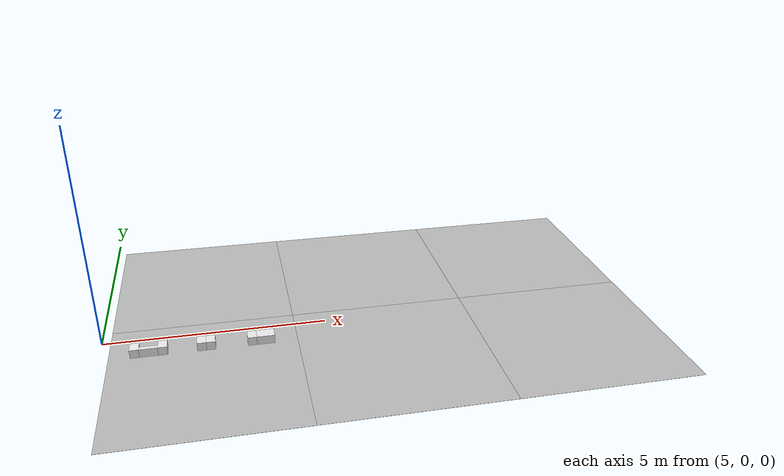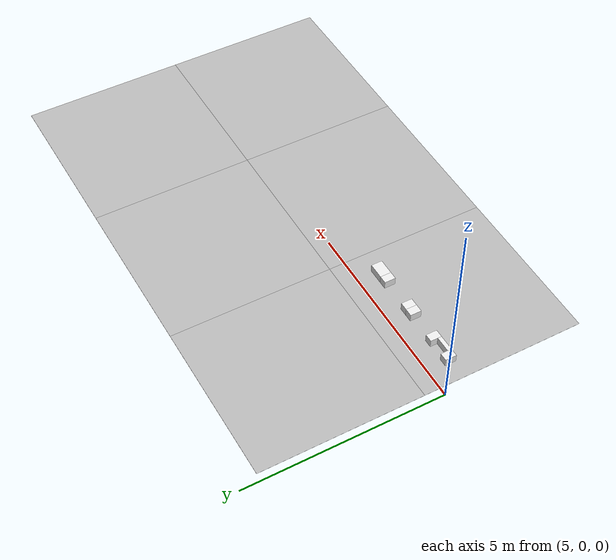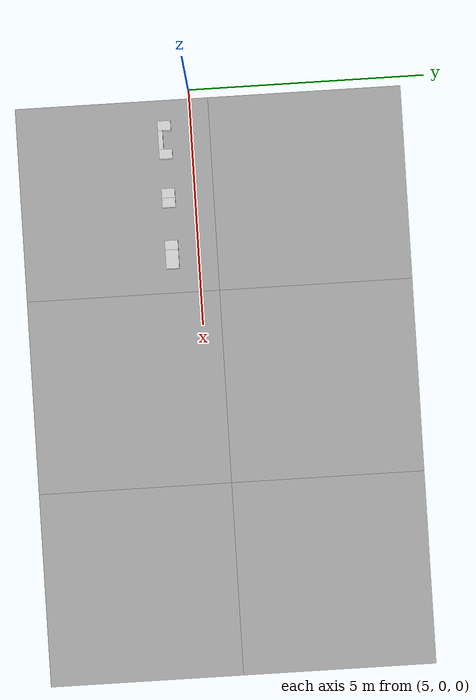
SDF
<sdf version="1.6">
 <world name="default">
  <model name="Tile/2-0">
   <static>1</static>
   <link name="link">
    <collision name="collision">
     <geometry><plane><normal>0 0 1</normal><size>4.096 4.096</size></plane></geometry>
     <surface><friction><ode><mu>100</mu><mu2>50</mu2></ode></friction></surface>
    </collision>
    <visual name="visual">
     <cast_shadows>0</cast_shadows>
     <geometry><plane><normal>0 0 1</normal><size>4.096 4.096</size></plane></geometry>
     <material>
      <script>
       <uri>file://materials/scripts</uri>
       <uri>file://materials/textures</uri>
       <name>Tile/a379fc379e664b545e98a0c7c8d8d15c42673b416fc362281216d9c1a77ca6e1</name>
      </script>
     </material>
    </visual>
   </link>
   <pose>7.24 -1.6520000000000001 0 0 -0 0</pose>
  </model>
  <model name="Tile/2-1">
   <static>1</static>
   <link name="link">
    <collision name="collision">
     <geometry><plane><normal>0 0 1</normal><size>4.096 4.096</size></plane></geometry>
     <surface><friction><ode><mu>100</mu><mu2>50</mu2></ode></friction></surface>
    </collision>
    <visual name="visual">
     <cast_shadows>0</cast_shadows>
     <geometry><plane><normal>0 0 1</normal><size>4.096 4.096</size></plane></geometry>
     <material>
      <script>
       <uri>file://materials/scripts</uri>
       <uri>file://materials/textures</uri>
       <name>Tile/13957a6de1f2afce18d7f1f64dacc2f21295e26ccf498256b0e1a51002cd5706</name>
      </script>
     </material>
    </visual>
   </link>
   <pose>7.24 2.444 0 0 -0 0</pose>
  </model>
  <model name="Tile/3-0">
   <static>1</static>
   <link name="link">
    <collision name="collision">
     <geometry><plane><normal>0 0 1</normal><size>4.096 4.096</size></plane></geometry>
     <surface><friction><ode><mu>100</mu><mu2>50</mu2></ode></friction></surface>
    </collision>
    <visual name="visual">
     <cast_shadows>0</cast_shadows>
     <geometry><plane><normal>0 0 1</normal><size>4.096 4.096</size></plane></geometry>
     <material>
      <script>
       <uri>file://materials/scripts</uri>
       <uri>file://materials/textures</uri>
       <name>Tile/abe61641e72e42510ec0c33382329821aa0ffdabd8bdd301795f6aacd2568930</name>
      </script>
     </material>
    </visual>
   </link>
   <pose>11.336 -1.6520000000000001 0 0 -0 0</pose>
  </model>
  <model name="Tile/3-1">
   <static>1</static>
   <link name="link">
    <collision name="collision">
     <geometry><plane><normal>0 0 1</normal><size>4.096 4.096</size></plane></geometry>
     <surface><friction><ode><mu>100</mu><mu2>50</mu2></ode></friction></surface>
    </collision>
    <visual name="visual">
     <cast_shadows>0</cast_shadows>
     <geometry><plane><normal>0 0 1</normal><size>4.096 4.096</size></plane></geometry>
     <material>
      <script>
       <uri>file://materials/scripts</uri>
       <uri>file://materials/textures</uri>
       <name>Tile/9a638098c074a6a28d2b802bd76e24a7c94687fec106f022fc197313878202a5</name>
      </script>
     </material>
    </visual>
   </link>
   <pose>11.336 2.444 0 0 -0 0</pose>
  </model>
  <model name="Tile/4-0">
   <static>1</static>
   <link name="link">
    <collision name="collision">
     <geometry><plane><normal>0 0 1</normal><size>4.096 4.096</size></plane></geometry>
     <surface><friction><ode><mu>100</mu><mu2>50</mu2></ode></friction></surface>
    </collision>
    <visual name="visual">
     <cast_shadows>0</cast_shadows>
     <geometry><plane><normal>0 0 1</normal><size>4.096 4.096</size></plane></geometry>
     <material>
      <script>
       <uri>file://materials/scripts</uri>
       <uri>file://materials/textures</uri>
       <name>Tile/5eab350b8220ac9944dbdfa4ac3288c7c17e24c3bf5df0dfcf6173d64dae00a1</name>
      </script>
     </material>
    </visual>
   </link>
   <pose>15.431999999999999 -1.6520000000000001 0 0 -0 0</pose>
  </model>
  <model name="Tile/4-1">
   <static>1</static>
   <link name="link">
    <collision name="collision">
     <geometry><plane><normal>0 0 1</normal><size>4.096 4.096</size></plane></geometry>
     <surface><friction><ode><mu>100</mu><mu2>50</mu2></ode></friction></surface>
    </collision>
    <visual name="visual">
     <cast_shadows>0</cast_shadows>
     <geometry><plane><normal>0 0 1</normal><size>4.096 4.096</size></plane></geometry>
     <material>
      <script>
       <uri>file://materials/scripts</uri>
       <uri>file://materials/textures</uri>
       <name>Tile/5eab350b8220ac9944dbdfa4ac3288c7c17e24c3bf5df0dfcf6173d64dae00a1</name>
      </script>
     </material>
    </visual>
   </link>
   <pose>15.431999999999999 2.444 0 0 -0 0</pose>
  </model>
  <model name="Obstacle/-57/0">
   <pose>5.750000000000001 -0.5599999999999999 0.1 0 0 -0.0</pose>
   <link name="link">
    <inertial>
     <mass>10</mass>
     <inertia>
      <ixx>0.166667</ixx>
      <ixy>0</ixy>
      <ixz>0</ixz>
      <iyy>0.166667</iyy>
      <iyz>0</iyz>
      <izz>0.166667</izz>
     </inertia>
    </inertial>
    <collision name="collision"><geometry><box><size>0.2 0.28 0.2</size></box></geometry></collision>
    <visual name="visual">
     <geometry><box><size>0.2 0.28 0.2</size></box></geometry>
     <material>
      <script><name>Gazebo/White</name><uri>file://media/materials/scripts/gazebo.material</uri></script>
     </material>
    </visual>
   </link>
  </model>
  <model name="Obstacle/-61/0">
   <pose>6.050000000000002 -0.6499999999999999 0.1 0 0 -0.0</pose>
   <link name="link">
    <inertial>
     <mass>10</mass>
     <inertia>
      <ixx>0.166667</ixx>
      <ixy>0</ixy>
      <ixz>0</ixz>
      <iyy>0.166667</iyy>
      <iyz>0</iyz>
      <izz>0.166667</izz>
     </inertia>
    </inertial>
    <collision name="collision"><geometry><box><size>0.4 0.1 0.2</size></box></geometry></collision>
    <visual name="visual">
     <geometry><box><size>0.4 0.1 0.2</size></box></geometry>
     <material>
      <script><name>Gazebo/White</name><uri>file://media/materials/scripts/gazebo.material</uri></script>
     </material>
    </visual>
   </link>
  </model>
  <model name="Obstacle/-65/0">
   <pose>6.350000000000001 -0.5599999999999999 0.1 0 0 -0.0</pose>
   <link name="link">
    <inertial>
     <mass>10</mass>
     <inertia>
      <ixx>0.166667</ixx>
      <ixy>0</ixy>
      <ixz>0</ixz>
      <iyy>0.166667</iyy>
      <iyz>0</iyz>
      <izz>0.166667</izz>
     </inertia>
    </inertial>
    <collision name="collision"><geometry><box><size>0.2 0.28 0.2</size></box></geometry></collision>
    <visual name="visual">
     <geometry><box><size>0.2 0.28 0.2</size></box></geometry>
     <material>
      <script><name>Gazebo/White</name><uri>file://media/materials/scripts/gazebo.material</uri></script>
     </material>
    </visual>
   </link>
  </model>
  <model name="Obstacle/-72/0">
   <pose>7.1800000000000015 -0.5599999999999999 0.1 0 0 -0.0</pose>
   <link name="link">
    <inertial>
     <mass>10</mass>
     <inertia>
      <ixx>0.166667</ixx>
      <ixy>0</ixy>
      <ixz>0</ixz>
      <iyy>0.166667</iyy>
      <iyz>0</iyz>
      <izz>0.166667</izz>
     </inertia>
    </inertial>
    <collision name="collision"><geometry><box><size>0.2 0.28 0.2</size></box></geometry></collision>
    <visual name="visual">
     <geometry><box><size>0.2 0.28 0.2</size></box></geometry>
     <material>
      <script><name>Gazebo/White</name><uri>file://media/materials/scripts/gazebo.material</uri></script>
     </material>
    </visual>
   </link>
  </model>
  <model name="Obstacle/-76/0">
   <pose>7.380000000000002 -0.5599999999999999 0.1 0 0 -0.0</pose>
   <link name="link">
    <inertial>
     <mass>10</mass>
     <inertia>
      <ixx>0.166667</ixx>
      <ixy>0</ixy>
      <ixz>0</ixz>
      <iyy>0.166667</iyy>
      <iyz>0</iyz>
      <izz>0.166667</izz>
     </inertia>
    </inertial>
    <collision name="collision"><geometry><box><size>0.2 0.28 0.2</size></box></geometry></collision>
    <visual name="visual">
     <geometry><box><size>0.2 0.28 0.2</size></box></geometry>
     <material>
      <script><name>Gazebo/White</name><uri>file://media/materials/scripts/gazebo.material</uri></script>
     </material>
    </visual>
   </link>
  </model>
  <model name="Obstacle/-83/0">
   <pose>8.280000000000001 -0.5599999999999999 0.1 0 0 -0.0</pose>
   <link name="link">
    <inertial>
     <mass>10</mass>
     <inertia>
      <ixx>0.166667</ixx>
      <ixy>0</ixy>
      <ixz>0</ixz>
      <iyy>0.166667</iyy>
      <iyz>0</iyz>
      <izz>0.166667</izz>
     </inertia>
    </inertial>
    <collision name="collision"><geometry><box><size>0.2 0.28 0.2</size></box></geometry></collision>
    <visual name="visual">
     <geometry><box><size>0.2 0.28 0.2</size></box></geometry>
     <material>
      <script><name>Gazebo/White</name><uri>file://media/materials/scripts/gazebo.material</uri></script>
     </material>
    </visual>
   </link>
  </model>
  <model name="Obstacle/-87/0">
   <pose>8.58 -0.5599999999999999 0.1 0 0 -0.0</pose>
   <link name="link">
    <inertial>
     <mass>10</mass>
     <inertia>
      <ixx>0.166667</ixx>
      <ixy>0</ixy>
      <ixz>0</ixz>
      <iyy>0.166667</iyy>
      <iyz>0</iyz>
      <izz>0.166667</izz>
     </inertia>
    </inertial>
    <collision name="collision"><geometry><box><size>0.4 0.28 0.2</size></box></geometry></collision>
    <visual name="visual">
     <geometry><box><size>0.4 0.28 0.2</size></box></geometry>
     <material>
      <script><name>Gazebo/White</name><uri>file://media/materials/scripts/gazebo.material</uri></script>
     </material>
    </visual>
   </link>
  </model>
 </world>
</sdf>
